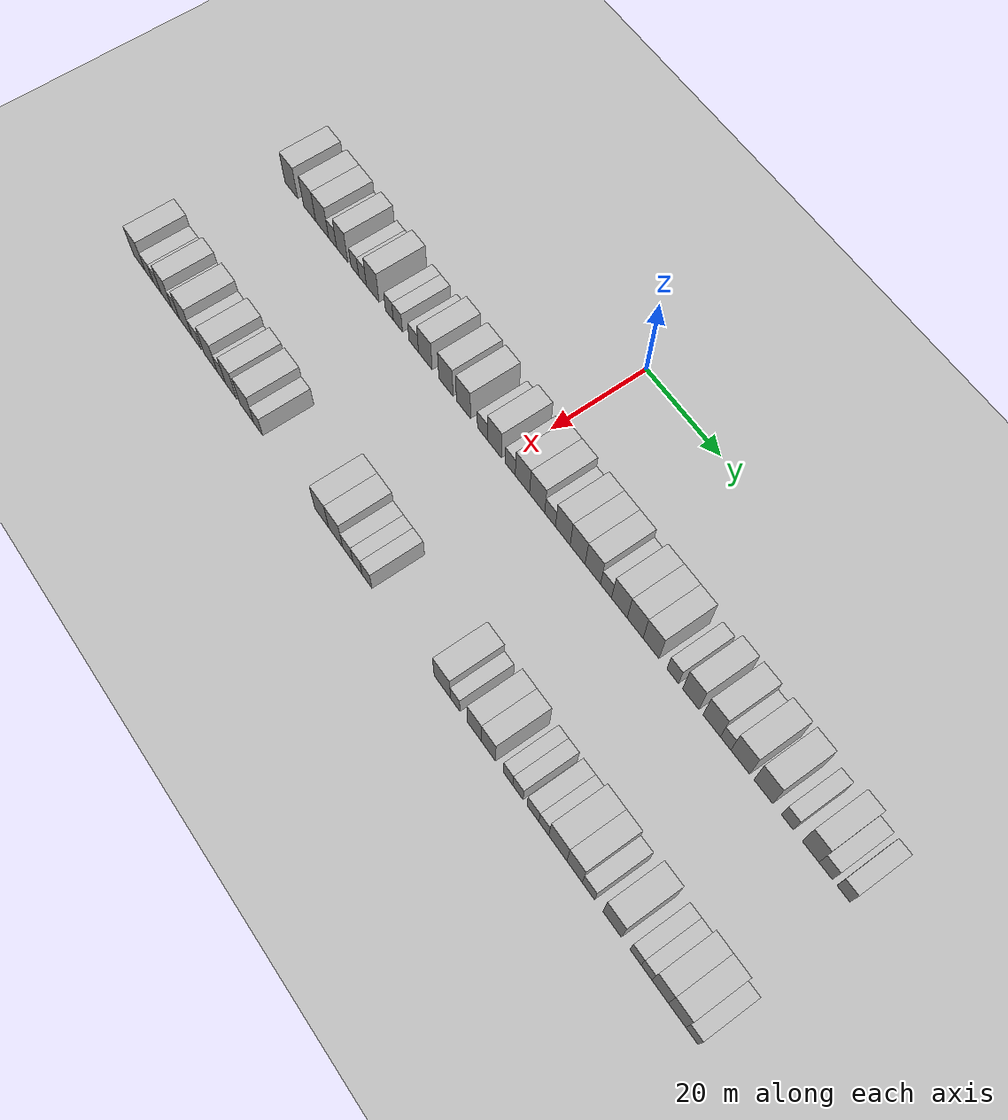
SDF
<sdf version="1.6">
 <world name="default">
  <include><name>ground_plane_1</name><uri>model://HANNAS_ground_plane</uri></include>
  <include>
   <name>ground_plane_2</name>
   <uri>model://HANNAS_ground_plane</uri>
   <pose>100 0 0  0 0 0</pose>
  </include>
  <model name="building_34">
   <static>1</static>
   <pose>25.0000 -65.5023 0 0.000000 0.000000 0.000000</pose>
   <link name="link">
    <pose>0 0 4.50 0 0 0</pose>
    <collision name="collision"><geometry><box><size>10.0000 4.3100 9.0000</size></box></geometry></collision>
    <visual name="visual">
     <cast_shadows>0</cast_shadows>
     <geometry><box><size>10.0000 4.3100 9.0000</size></box></geometry>
     <material>
      <script>
       <uri>model://HANNAS_wall/materials/scripts</uri>
       <uri>model://HANNAS_wall/materials/textures</uri>
       <name>vrc/HANNAS_wall</name>
      </script>
     </material>
    </visual>
   </link>
  </model>
  <model name="building_35">
   <static>1</static>
   <pose>25.0000 -59.3474 0 0.000000 0.000000 0.000000</pose>
   <link name="link">
    <pose>0 0 4.50 0 0 0</pose>
    <collision name="collision"><geometry><box><size>10.0000 3.9999 9.0000</size></box></geometry></collision>
    <visual name="visual">
     <cast_shadows>0</cast_shadows>
     <geometry><box><size>10.0000 3.9999 9.0000</size></box></geometry>
     <material>
      <script>
       <uri>model://HANNAS_wall/materials/scripts</uri>
       <uri>model://HANNAS_wall/materials/textures</uri>
       <name>vrc/HANNAS_wall</name>
      </script>
     </material>
    </visual>
   </link>
  </model>
  <model name="building_36">
   <static>1</static>
   <pose>25.0000 -55.2060 0 0.000000 0.000000 0.000000</pose>
   <link name="link">
    <pose>0 0 4.50 0 0 0</pose>
    <collision name="collision"><geometry><box><size>10.0000 4.2829 9.0000</size></box></geometry></collision>
    <visual name="visual">
     <cast_shadows>0</cast_shadows>
     <geometry><box><size>10.0000 4.2829 9.0000</size></box></geometry>
     <material>
      <script>
       <uri>model://HANNAS_wall/materials/scripts</uri>
       <uri>model://HANNAS_wall/materials/textures</uri>
       <name>vrc/HANNAS_wall</name>
      </script>
     </material>
    </visual>
   </link>
  </model>
  <model name="building_37">
   <static>1</static>
   <pose>25.0000 -51.7401 0 0.000000 0.000000 0.000000</pose>
   <link name="link">
    <pose>0 0 3.00 0 0 0</pose>
    <collision name="collision"><geometry><box><size>10.0000 2.6489 6.0000</size></box></geometry></collision>
    <visual name="visual">
     <cast_shadows>0</cast_shadows>
     <geometry><box><size>10.0000 2.6489 6.0000</size></box></geometry>
     <material>
      <script>
       <uri>model://HANNAS_wall/materials/scripts</uri>
       <uri>model://HANNAS_wall/materials/textures</uri>
       <name>vrc/HANNAS_wall</name>
      </script>
     </material>
    </visual>
   </link>
  </model>
  <model name="building_38">
   <static>1</static>
   <pose>25.0000 -48.6042 0 0.000000 0.000000 0.000000</pose>
   <link name="link">
    <pose>0 0 4.50 0 0 0</pose>
    <collision name="collision"><geometry><box><size>10.0000 3.6230 9.0000</size></box></geometry></collision>
    <visual name="visual">
     <cast_shadows>0</cast_shadows>
     <geometry><box><size>10.0000 3.6230 9.0000</size></box></geometry>
     <material>
      <script>
       <uri>model://HANNAS_wall/materials/scripts</uri>
       <uri>model://HANNAS_wall/materials/textures</uri>
       <name>vrc/HANNAS_wall</name>
      </script>
     </material>
    </visual>
   </link>
  </model>
  <model name="building_39">
   <static>1</static>
   <pose>25.0000 -44.5443 0 0.000000 0.000000 0.000000</pose>
   <link name="link">
    <pose>0 0 3.00 0 0 0</pose>
    <collision name="collision"><geometry><box><size>10.0000 2.4967 6.0000</size></box></geometry></collision>
    <visual name="visual">
     <cast_shadows>0</cast_shadows>
     <geometry><box><size>10.0000 2.4967 6.0000</size></box></geometry>
     <material>
      <script>
       <uri>model://HANNAS_wall/materials/scripts</uri>
       <uri>model://HANNAS_wall/materials/textures</uri>
       <name>vrc/HANNAS_wall</name>
      </script>
     </material>
    </visual>
   </link>
  </model>
  <model name="building_40">
   <static>1</static>
   <pose>25.0000 -42.0547 0 0.000000 0.000000 0.000000</pose>
   <link name="link">
    <pose>0 0 3.00 0 0 0</pose>
    <collision name="collision"><geometry><box><size>10.0000 2.4824 6.0000</size></box></geometry></collision>
    <visual name="visual">
     <cast_shadows>0</cast_shadows>
     <geometry><box><size>10.0000 2.4824 6.0000</size></box></geometry>
     <material>
      <script>
       <uri>model://HANNAS_wall/materials/scripts</uri>
       <uri>model://HANNAS_wall/materials/textures</uri>
       <name>vrc/HANNAS_wall</name>
      </script>
     </material>
    </visual>
   </link>
  </model>
  <model name="building_41">
   <static>1</static>
   <pose>25.0000 -38.8183 0 0.000000 0.000000 0.000000</pose>
   <link name="link">
    <pose>0 0 4.50 0 0 0</pose>
    <collision name="collision"><geometry><box><size>10.0000 3.9903 9.0000</size></box></geometry></collision>
    <visual name="visual">
     <cast_shadows>0</cast_shadows>
     <geometry><box><size>10.0000 3.9903 9.0000</size></box></geometry>
     <material>
      <script>
       <uri>model://HANNAS_wall/materials/scripts</uri>
       <uri>model://HANNAS_wall/materials/textures</uri>
       <name>vrc/HANNAS_wall</name>
      </script>
     </material>
    </visual>
   </link>
  </model>
  <model name="building_42">
   <static>1</static>
   <pose>25.0000 -33.5864 0 0.000000 0.000000 0.000000</pose>
   <link name="link">
    <pose>0 0 3.00 0 0 0</pose>
    <collision name="collision"><geometry><box><size>10.0000 2.4735 6.0000</size></box></geometry></collision>
    <visual name="visual">
     <cast_shadows>0</cast_shadows>
     <geometry><box><size>10.0000 2.4735 6.0000</size></box></geometry>
     <material>
      <script>
       <uri>model://HANNAS_wall/materials/scripts</uri>
       <uri>model://HANNAS_wall/materials/textures</uri>
       <name>vrc/HANNAS_wall</name>
      </script>
     </material>
    </visual>
   </link>
  </model>
  <model name="building_43">
   <static>1</static>
   <pose>25.0000 -30.9347 0 0.000000 0.000000 0.000000</pose>
   <link name="link">
    <pose>0 0 3.00 0 0 0</pose>
    <collision name="collision"><geometry><box><size>10.0000 2.8299 6.0000</size></box></geometry></collision>
    <visual name="visual">
     <cast_shadows>0</cast_shadows>
     <geometry><box><size>10.0000 2.8299 6.0000</size></box></geometry>
     <material>
      <script>
       <uri>model://HANNAS_wall/materials/scripts</uri>
       <uri>model://HANNAS_wall/materials/textures</uri>
       <name>vrc/HANNAS_wall</name>
      </script>
     </material>
    </visual>
   </link>
  </model>
  <model name="building_44">
   <static>1</static>
   <pose>25.0000 -26.0510 0 0.000000 0.000000 0.000000</pose>
   <link name="link">
    <pose>0 0 3.00 0 0 0</pose>
    <collision name="collision"><geometry><box><size>10.0000 2.9376 6.0000</size></box></geometry></collision>
    <visual name="visual">
     <cast_shadows>0</cast_shadows>
     <geometry><box><size>10.0000 2.9376 6.0000</size></box></geometry>
     <material>
      <script>
       <uri>model://HANNAS_wall/materials/scripts</uri>
       <uri>model://HANNAS_wall/materials/textures</uri>
       <name>vrc/HANNAS_wall</name>
      </script>
     </material>
    </visual>
   </link>
  </model>
  <model name="building_45">
   <static>1</static>
   <pose>25.0000 -22.5255 0 0.000000 0.000000 0.000000</pose>
   <link name="link">
    <pose>0 0 4.50 0 0 0</pose>
    <collision name="collision"><geometry><box><size>10.0000 4.1135 9.0000</size></box></geometry></collision>
    <visual name="visual">
     <cast_shadows>0</cast_shadows>
     <geometry><box><size>10.0000 4.1135 9.0000</size></box></geometry>
     <material>
      <script>
       <uri>model://HANNAS_wall/materials/scripts</uri>
       <uri>model://HANNAS_wall/materials/textures</uri>
       <name>vrc/HANNAS_wall</name>
      </script>
     </material>
    </visual>
   </link>
  </model>
  <model name="building_46">
   <static>1</static>
   <pose>25.0000 -16.3590 0 0.000000 0.000000 0.000000</pose>
   <link name="link">
    <pose>0 0 4.50 0 0 0</pose>
    <collision name="collision"><geometry><box><size>10.0000 4.2193 9.0000</size></box></geometry></collision>
    <visual name="visual">
     <cast_shadows>0</cast_shadows>
     <geometry><box><size>10.0000 4.2193 9.0000</size></box></geometry>
     <material>
      <script>
       <uri>model://HANNAS_wall/materials/scripts</uri>
       <uri>model://HANNAS_wall/materials/textures</uri>
       <name>vrc/HANNAS_wall</name>
      </script>
     </material>
    </visual>
   </link>
  </model>
  <model name="building_47">
   <static>1</static>
   <pose>25.0000 -11.1760 0 0.000000 0.000000 0.000000</pose>
   <link name="link">
    <pose>0 0 4.50 0 0 0</pose>
    <collision name="collision"><geometry><box><size>10.0000 4.1468 9.0000</size></box></geometry></collision>
    <visual name="visual">
     <cast_shadows>0</cast_shadows>
     <geometry><box><size>10.0000 4.1468 9.0000</size></box></geometry>
     <material>
      <script>
       <uri>model://HANNAS_wall/materials/scripts</uri>
       <uri>model://HANNAS_wall/materials/textures</uri>
       <name>vrc/HANNAS_wall</name>
      </script>
     </material>
    </visual>
   </link>
  </model>
  <model name="building_48">
   <static>1</static>
   <pose>25.0000 -5.6765 0 0.000000 0.000000 0.000000</pose>
   <link name="link">
    <pose>0 0 3.00 0 0 0</pose>
    <collision name="collision"><geometry><box><size>10.0000 2.8521 6.0000</size></box></geometry></collision>
    <visual name="visual">
     <cast_shadows>0</cast_shadows>
     <geometry><box><size>10.0000 2.8521 6.0000</size></box></geometry>
     <material>
      <script>
       <uri>model://HANNAS_wall/materials/scripts</uri>
       <uri>model://HANNAS_wall/materials/textures</uri>
       <name>vrc/HANNAS_wall</name>
      </script>
     </material>
    </visual>
   </link>
  </model>
  <model name="building_49">
   <static>1</static>
   <pose>25.0000 -2.2138 0 0.000000 0.000000 0.000000</pose>
   <link name="link">
    <pose>0 0 4.50 0 0 0</pose>
    <collision name="collision"><geometry><box><size>10.0000 4.0734 9.0000</size></box></geometry></collision>
    <visual name="visual">
     <cast_shadows>0</cast_shadows>
     <geometry><box><size>10.0000 4.0734 9.0000</size></box></geometry>
     <material>
      <script>
       <uri>model://HANNAS_wall/materials/scripts</uri>
       <uri>model://HANNAS_wall/materials/textures</uri>
       <name>vrc/HANNAS_wall</name>
      </script>
     </material>
    </visual>
   </link>
  </model>
  <model name="building_50">
   <static>1</static>
   <pose>25.0000 2.2588 0 0.000000 0.000000 0.000000</pose>
   <link name="link">
    <pose>0 0 3.00 0 0 0</pose>
    <collision name="collision"><geometry><box><size>10.0000 2.8717 6.0000</size></box></geometry></collision>
    <visual name="visual">
     <cast_shadows>0</cast_shadows>
     <geometry><box><size>10.0000 2.8717 6.0000</size></box></geometry>
     <material>
      <script>
       <uri>model://HANNAS_wall/materials/scripts</uri>
       <uri>model://HANNAS_wall/materials/textures</uri>
       <name>vrc/HANNAS_wall</name>
      </script>
     </material>
    </visual>
   </link>
  </model>
  <model name="building_51">
   <static>1</static>
   <pose>25.0000 5.7021 0 0.000000 0.000000 0.000000</pose>
   <link name="link">
    <pose>0 0 4.50 0 0 0</pose>
    <collision name="collision"><geometry><box><size>10.0000 4.0148 9.0000</size></box></geometry></collision>
    <visual name="visual">
     <cast_shadows>0</cast_shadows>
     <geometry><box><size>10.0000 4.0148 9.0000</size></box></geometry>
     <material>
      <script>
       <uri>model://HANNAS_wall/materials/scripts</uri>
       <uri>model://HANNAS_wall/materials/textures</uri>
       <name>vrc/HANNAS_wall</name>
      </script>
     </material>
    </visual>
   </link>
  </model>
  <model name="building_52">
   <static>1</static>
   <pose>25.0000 9.8063 0 0.000000 0.000000 0.000000</pose>
   <link name="link">
    <pose>0 0 4.50 0 0 0</pose>
    <collision name="collision"><geometry><box><size>10.0000 4.1936 9.0000</size></box></geometry></collision>
    <visual name="visual">
     <cast_shadows>0</cast_shadows>
     <geometry><box><size>10.0000 4.1936 9.0000</size></box></geometry>
     <material>
      <script>
       <uri>model://HANNAS_wall/materials/scripts</uri>
       <uri>model://HANNAS_wall/materials/textures</uri>
       <name>vrc/HANNAS_wall</name>
      </script>
     </material>
    </visual>
   </link>
  </model>
  <model name="building_53">
   <static>1</static>
   <pose>25.0000 13.3732 0 0.000000 0.000000 0.000000</pose>
   <link name="link">
    <pose>0 0 3.00 0 0 0</pose>
    <collision name="collision"><geometry><box><size>10.0000 2.9401 6.0000</size></box></geometry></collision>
    <visual name="visual">
     <cast_shadows>0</cast_shadows>
     <geometry><box><size>10.0000 2.9401 6.0000</size></box></geometry>
     <material>
      <script>
       <uri>model://HANNAS_wall/materials/scripts</uri>
       <uri>model://HANNAS_wall/materials/textures</uri>
       <name>vrc/HANNAS_wall</name>
      </script>
     </material>
    </visual>
   </link>
  </model>
  <model name="building_54">
   <static>1</static>
   <pose>25.0000 16.8367 0 0.000000 0.000000 0.000000</pose>
   <link name="link">
    <pose>0 0 4.50 0 0 0</pose>
    <collision name="collision"><geometry><box><size>10.0000 3.9869 9.0000</size></box></geometry></collision>
    <visual name="visual">
     <cast_shadows>0</cast_shadows>
     <geometry><box><size>10.0000 3.9869 9.0000</size></box></geometry>
     <material>
      <script>
       <uri>model://HANNAS_wall/materials/scripts</uri>
       <uri>model://HANNAS_wall/materials/textures</uri>
       <name>vrc/HANNAS_wall</name>
      </script>
     </material>
    </visual>
   </link>
  </model>
  <model name="building_55">
   <static>1</static>
   <pose>25.0000 20.8237 0 0.000000 0.000000 0.000000</pose>
   <link name="link">
    <pose>0 0 4.50 0 0 0</pose>
    <collision name="collision"><geometry><box><size>10.0000 3.9871 9.0000</size></box></geometry></collision>
    <visual name="visual">
     <cast_shadows>0</cast_shadows>
     <geometry><box><size>10.0000 3.9871 9.0000</size></box></geometry>
     <material>
      <script>
       <uri>model://HANNAS_wall/materials/scripts</uri>
       <uri>model://HANNAS_wall/materials/textures</uri>
       <name>vrc/HANNAS_wall</name>
      </script>
     </material>
    </visual>
   </link>
  </model>
  <model name="building_56">
   <static>1</static>
   <pose>25.0000 24.8852 0 0.000000 0.000000 0.000000</pose>
   <link name="link">
    <pose>0 0 4.50 0 0 0</pose>
    <collision name="collision"><geometry><box><size>10.0000 4.1360 9.0000</size></box></geometry></collision>
    <visual name="visual">
     <cast_shadows>0</cast_shadows>
     <geometry><box><size>10.0000 4.1360 9.0000</size></box></geometry>
     <material>
      <script>
       <uri>model://HANNAS_wall/materials/scripts</uri>
       <uri>model://HANNAS_wall/materials/textures</uri>
       <name>vrc/HANNAS_wall</name>
      </script>
     </material>
    </visual>
   </link>
  </model>
  <model name="building_57">
   <static>1</static>
   <pose>25.0000 28.3893 0 0.000000 0.000000 0.000000</pose>
   <link name="link">
    <pose>0 0 3.00 0 0 0</pose>
    <collision name="collision"><geometry><box><size>10.0000 2.8722 6.0000</size></box></geometry></collision>
    <visual name="visual">
     <cast_shadows>0</cast_shadows>
     <geometry><box><size>10.0000 2.8722 6.0000</size></box></geometry>
     <material>
      <script>
       <uri>model://HANNAS_wall/materials/scripts</uri>
       <uri>model://HANNAS_wall/materials/textures</uri>
       <name>vrc/HANNAS_wall</name>
      </script>
     </material>
    </visual>
   </link>
  </model>
  <model name="building_58">
   <static>1</static>
   <pose>25.0000 31.8541 0 0.000000 0.000000 0.000000</pose>
   <link name="link">
    <pose>0 0 4.50 0 0 0</pose>
    <collision name="collision"><geometry><box><size>10.0000 4.0575 9.0000</size></box></geometry></collision>
    <visual name="visual">
     <cast_shadows>0</cast_shadows>
     <geometry><box><size>10.0000 4.0575 9.0000</size></box></geometry>
     <material>
      <script>
       <uri>model://HANNAS_wall/materials/scripts</uri>
       <uri>model://HANNAS_wall/materials/textures</uri>
       <name>vrc/HANNAS_wall</name>
      </script>
     </material>
    </visual>
   </link>
  </model>
  <model name="building_59">
   <static>1</static>
   <pose>25.0000 35.9184 0 0.000000 0.000000 0.000000</pose>
   <link name="link">
    <pose>0 0 4.50 0 0 0</pose>
    <collision name="collision"><geometry><box><size>10.0000 4.0711 9.0000</size></box></geometry></collision>
    <visual name="visual">
     <cast_shadows>0</cast_shadows>
     <geometry><box><size>10.0000 4.0711 9.0000</size></box></geometry>
     <material>
      <script>
       <uri>model://HANNAS_wall/materials/scripts</uri>
       <uri>model://HANNAS_wall/materials/textures</uri>
       <name>vrc/HANNAS_wall</name>
      </script>
     </material>
    </visual>
   </link>
  </model>
  <model name="building_60">
   <static>1</static>
   <pose>25.0000 39.9813 0 0.000000 0.000000 0.000000</pose>
   <link name="link">
    <pose>0 0 4.50 0 0 0</pose>
    <collision name="collision"><geometry><box><size>10.0000 4.0546 9.0000</size></box></geometry></collision>
    <visual name="visual">
     <cast_shadows>0</cast_shadows>
     <geometry><box><size>10.0000 4.0546 9.0000</size></box></geometry>
     <material>
      <script>
       <uri>model://HANNAS_wall/materials/scripts</uri>
       <uri>model://HANNAS_wall/materials/textures</uri>
       <name>vrc/HANNAS_wall</name>
      </script>
     </material>
    </visual>
   </link>
  </model>
  <model name="building_61">
   <static>1</static>
   <pose>25.0000 45.4525 0 0.000000 0.000000 0.000000</pose>
   <link name="link">
    <pose>0 0 3.00 0 0 0</pose>
    <collision name="collision"><geometry><box><size>10.0000 2.8880 6.0000</size></box></geometry></collision>
    <visual name="visual">
     <cast_shadows>0</cast_shadows>
     <geometry><box><size>10.0000 2.8880 6.0000</size></box></geometry>
     <material>
      <script>
       <uri>model://HANNAS_wall/materials/scripts</uri>
       <uri>model://HANNAS_wall/materials/textures</uri>
       <name>vrc/HANNAS_wall</name>
      </script>
     </material>
    </visual>
   </link>
  </model>
  <model name="building_62">
   <static>1</static>
   <pose>25.0000 49.9165 0 0.000000 0.000000 0.000000</pose>
   <link name="link">
    <pose>0 0 4.50 0 0 0</pose>
    <collision name="collision"><geometry><box><size>10.0000 4.0400 9.0000</size></box></geometry></collision>
    <visual name="visual">
     <cast_shadows>0</cast_shadows>
     <geometry><box><size>10.0000 4.0400 9.0000</size></box></geometry>
     <material>
      <script>
       <uri>model://HANNAS_wall/materials/scripts</uri>
       <uri>model://HANNAS_wall/materials/textures</uri>
       <name>vrc/HANNAS_wall</name>
      </script>
     </material>
    </visual>
   </link>
  </model>
  <model name="building_63">
   <static>1</static>
   <pose>25.0000 55.0288 0 0.000000 0.000000 0.000000</pose>
   <link name="link">
    <pose>0 0 4.50 0 0 0</pose>
    <collision name="collision"><geometry><box><size>10.0000 4.1845 9.0000</size></box></geometry></collision>
    <visual name="visual">
     <cast_shadows>0</cast_shadows>
     <geometry><box><size>10.0000 4.1845 9.0000</size></box></geometry>
     <material>
      <script>
       <uri>model://HANNAS_wall/materials/scripts</uri>
       <uri>model://HANNAS_wall/materials/textures</uri>
       <name>vrc/HANNAS_wall</name>
      </script>
     </material>
    </visual>
   </link>
  </model>
  <model name="building_64">
   <static>1</static>
   <pose>25.0000 58.3787 0 0.000000 0.000000 0.000000</pose>
   <link name="link">
    <pose>0 0 3.00 0 0 0</pose>
    <collision name="collision"><geometry><box><size>10.0000 2.5154 6.0000</size></box></geometry></collision>
    <visual name="visual">
     <cast_shadows>0</cast_shadows>
     <geometry><box><size>10.0000 2.5154 6.0000</size></box></geometry>
     <material>
      <script>
       <uri>model://HANNAS_wall/materials/scripts</uri>
       <uri>model://HANNAS_wall/materials/textures</uri>
       <name>vrc/HANNAS_wall</name>
      </script>
     </material>
    </visual>
   </link>
  </model>
  <model name="building_65">
   <static>1</static>
   <pose>25.0000 61.8660 0 0.000000 0.000000 0.000000</pose>
   <link name="link">
    <pose>0 0 4.50 0 0 0</pose>
    <collision name="collision"><geometry><box><size>10.0000 4.4591 9.0000</size></box></geometry></collision>
    <visual name="visual">
     <cast_shadows>0</cast_shadows>
     <geometry><box><size>10.0000 4.4591 9.0000</size></box></geometry>
     <material>
      <script>
       <uri>model://HANNAS_wall/materials/scripts</uri>
       <uri>model://HANNAS_wall/materials/textures</uri>
       <name>vrc/HANNAS_wall</name>
      </script>
     </material>
    </visual>
   </link>
  </model>
  <model name="building_66">
   <static>1</static>
   <pose>25.0000 67.2920 0 0.000000 0.000000 0.000000</pose>
   <link name="link">
    <pose>0 0 4.50 0 0 0</pose>
    <collision name="collision"><geometry><box><size>10.0000 4.3930 9.0000</size></box></geometry></collision>
    <visual name="visual">
     <cast_shadows>0</cast_shadows>
     <geometry><box><size>10.0000 4.3930 9.0000</size></box></geometry>
     <material>
      <script>
       <uri>model://HANNAS_wall/materials/scripts</uri>
       <uri>model://HANNAS_wall/materials/textures</uri>
       <name>vrc/HANNAS_wall</name>
      </script>
     </material>
    </visual>
   </link>
  </model>
  <model name="building_67">
   <static>1</static>
   <pose>25.0000 72.8532 0 0.000000 0.000000 0.000000</pose>
   <link name="link">
    <pose>0 0 3.00 0 0 0</pose>
    <collision name="collision"><geometry><box><size>10.0000 2.7295 6.0000</size></box></geometry></collision>
    <visual name="visual">
     <cast_shadows>0</cast_shadows>
     <geometry><box><size>10.0000 2.7295 6.0000</size></box></geometry>
     <material>
      <script>
       <uri>model://HANNAS_wall/materials/scripts</uri>
       <uri>model://HANNAS_wall/materials/textures</uri>
       <name>vrc/HANNAS_wall</name>
      </script>
     </material>
    </visual>
   </link>
  </model>
  <model name="building_68">
   <static>1</static>
   <pose>25.0000 78.1152 0 0.000000 0.000000 0.000000</pose>
   <link name="link">
    <pose>0 0 4.50 0 0 0</pose>
    <collision name="collision"><geometry><box><size>10.0000 3.7944 9.0000</size></box></geometry></collision>
    <visual name="visual">
     <cast_shadows>0</cast_shadows>
     <geometry><box><size>10.0000 3.7944 9.0000</size></box></geometry>
     <material>
      <script>
       <uri>model://HANNAS_wall/materials/scripts</uri>
       <uri>model://HANNAS_wall/materials/textures</uri>
       <name>vrc/HANNAS_wall</name>
      </script>
     </material>
    </visual>
   </link>
  </model>
  <model name="building_69">
   <static>1</static>
   <pose>25.0000 81.5113 0 0.000000 0.000000 0.000000</pose>
   <link name="link">
    <pose>0 0 3.00 0 0 0</pose>
    <collision name="collision"><geometry><box><size>10.0000 2.9978 6.0000</size></box></geometry></collision>
    <visual name="visual">
     <cast_shadows>0</cast_shadows>
     <geometry><box><size>10.0000 2.9978 6.0000</size></box></geometry>
     <material>
      <script>
       <uri>model://HANNAS_wall/materials/scripts</uri>
       <uri>model://HANNAS_wall/materials/textures</uri>
       <name>vrc/HANNAS_wall</name>
      </script>
     </material>
    </visual>
   </link>
  </model>
  <model name="building_70">
   <static>1</static>
   <pose>25.0000 85.4505 0 0.000000 0.000000 0.000000</pose>
   <link name="link">
    <pose>0 0 3.00 0 0 0</pose>
    <collision name="collision"><geometry><box><size>10.0000 2.8807 6.0000</size></box></geometry></collision>
    <visual name="visual">
     <cast_shadows>0</cast_shadows>
     <geometry><box><size>10.0000 2.8807 6.0000</size></box></geometry>
     <material>
      <script>
       <uri>model://HANNAS_wall/materials/scripts</uri>
       <uri>model://HANNAS_wall/materials/textures</uri>
       <name>vrc/HANNAS_wall</name>
      </script>
     </material>
    </visual>
   </link>
  </model>
  <model name="building_148">
   <static>1</static>
   <pose>55.0000 -67.5060 0 0.000000 0.000000 0.000000</pose>
   <link name="link">
    <pose>0 0 4.50 0 0 0</pose>
    <collision name="collision"><geometry><box><size>10.0000 4.1159 9.0000</size></box></geometry></collision>
    <visual name="visual">
     <cast_shadows>0</cast_shadows>
     <geometry><box><size>10.0000 4.1159 9.0000</size></box></geometry>
     <material>
      <script>
       <uri>model://HANNAS_wall/materials/scripts</uri>
       <uri>model://HANNAS_wall/materials/textures</uri>
       <name>vrc/HANNAS_wall</name>
      </script>
     </material>
    </visual>
   </link>
  </model>
  <model name="building_149">
   <static>1</static>
   <pose>55.0000 -63.9919 0 0.000000 0.000000 0.000000</pose>
   <link name="link">
    <pose>0 0 3.00 0 0 0</pose>
    <collision name="collision"><geometry><box><size>10.0000 2.9124 6.0000</size></box></geometry></collision>
    <visual name="visual">
     <cast_shadows>0</cast_shadows>
     <geometry><box><size>10.0000 2.9124 6.0000</size></box></geometry>
     <material>
      <script>
       <uri>model://HANNAS_wall/materials/scripts</uri>
       <uri>model://HANNAS_wall/materials/textures</uri>
       <name>vrc/HANNAS_wall</name>
      </script>
     </material>
    </visual>
   </link>
  </model>
  <model name="building_150">
   <static>1</static>
   <pose>55.0000 -61.2125 0 0.000000 0.000000 0.000000</pose>
   <link name="link">
    <pose>0 0 3.00 0 0 0</pose>
    <collision name="collision"><geometry><box><size>10.0000 2.6464 6.0000</size></box></geometry></collision>
    <visual name="visual">
     <cast_shadows>0</cast_shadows>
     <geometry><box><size>10.0000 2.6464 6.0000</size></box></geometry>
     <material>
      <script>
       <uri>model://HANNAS_wall/materials/scripts</uri>
       <uri>model://HANNAS_wall/materials/textures</uri>
       <name>vrc/HANNAS_wall</name>
      </script>
     </material>
    </visual>
   </link>
  </model>
  <model name="building_151">
   <static>1</static>
   <pose>55.0000 -58.0009 0 0.000000 0.000000 0.000000</pose>
   <link name="link">
    <pose>0 0 4.50 0 0 0</pose>
    <collision name="collision"><geometry><box><size>10.0000 3.7767 9.0000</size></box></geometry></collision>
    <visual name="visual">
     <cast_shadows>0</cast_shadows>
     <geometry><box><size>10.0000 3.7767 9.0000</size></box></geometry>
     <material>
      <script>
       <uri>model://HANNAS_wall/materials/scripts</uri>
       <uri>model://HANNAS_wall/materials/textures</uri>
       <name>vrc/HANNAS_wall</name>
      </script>
     </material>
    </visual>
   </link>
  </model>
  <model name="building_152">
   <static>1</static>
   <pose>55.0000 -54.8545 0 0.000000 0.000000 0.000000</pose>
   <link name="link">
    <pose>0 0 3.00 0 0 0</pose>
    <collision name="collision"><geometry><box><size>10.0000 2.5161 6.0000</size></box></geometry></collision>
    <visual name="visual">
     <cast_shadows>0</cast_shadows>
     <geometry><box><size>10.0000 2.5161 6.0000</size></box></geometry>
     <material>
      <script>
       <uri>model://HANNAS_wall/materials/scripts</uri>
       <uri>model://HANNAS_wall/materials/textures</uri>
       <name>vrc/HANNAS_wall</name>
      </script>
     </material>
    </visual>
   </link>
  </model>
  <model name="building_153">
   <static>1</static>
   <pose>55.0000 -51.4045 0 0.000000 0.000000 0.000000</pose>
   <link name="link">
    <pose>0 0 4.50 0 0 0</pose>
    <collision name="collision"><geometry><box><size>10.0000 4.3841 9.0000</size></box></geometry></collision>
    <visual name="visual">
     <cast_shadows>0</cast_shadows>
     <geometry><box><size>10.0000 4.3841 9.0000</size></box></geometry>
     <material>
      <script>
       <uri>model://HANNAS_wall/materials/scripts</uri>
       <uri>model://HANNAS_wall/materials/textures</uri>
       <name>vrc/HANNAS_wall</name>
      </script>
     </material>
    </visual>
   </link>
  </model>
  <model name="building_154">
   <static>1</static>
   <pose>55.0000 -47.7237 0 0.000000 0.000000 0.000000</pose>
   <link name="link">
    <pose>0 0 3.00 0 0 0</pose>
    <collision name="collision"><geometry><box><size>10.0000 2.9774 6.0000</size></box></geometry></collision>
    <visual name="visual">
     <cast_shadows>0</cast_shadows>
     <geometry><box><size>10.0000 2.9774 6.0000</size></box></geometry>
     <material>
      <script>
       <uri>model://HANNAS_wall/materials/scripts</uri>
       <uri>model://HANNAS_wall/materials/textures</uri>
       <name>vrc/HANNAS_wall</name>
      </script>
     </material>
    </visual>
   </link>
  </model>
  <model name="building_155">
   <static>1</static>
   <pose>55.0000 -43.0448 0 0.000000 0.000000 0.000000</pose>
   <link name="link">
    <pose>0 0 4.50 0 0 0</pose>
    <collision name="collision"><geometry><box><size>10.0000 4.3804 9.0000</size></box></geometry></collision>
    <visual name="visual">
     <cast_shadows>0</cast_shadows>
     <geometry><box><size>10.0000 4.3804 9.0000</size></box></geometry>
     <material>
      <script>
       <uri>model://HANNAS_wall/materials/scripts</uri>
       <uri>model://HANNAS_wall/materials/textures</uri>
       <name>vrc/HANNAS_wall</name>
      </script>
     </material>
    </visual>
   </link>
  </model>
  <model name="building_156">
   <static>1</static>
   <pose>55.0000 -39.5340 0 0.000000 0.000000 0.000000</pose>
   <link name="link">
    <pose>0 0 3.00 0 0 0</pose>
    <collision name="collision"><geometry><box><size>10.0000 2.6412 6.0000</size></box></geometry></collision>
    <visual name="visual">
     <cast_shadows>0</cast_shadows>
     <geometry><box><size>10.0000 2.6412 6.0000</size></box></geometry>
     <material>
      <script>
       <uri>model://HANNAS_wall/materials/scripts</uri>
       <uri>model://HANNAS_wall/materials/textures</uri>
       <name>vrc/HANNAS_wall</name>
      </script>
     </material>
    </visual>
   </link>
  </model>
  <model name="building_157">
   <static>1</static>
   <pose>55.0000 -36.3586 0 0.000000 0.000000 0.000000</pose>
   <link name="link">
    <pose>0 0 4.50 0 0 0</pose>
    <collision name="collision"><geometry><box><size>10.0000 3.7096 9.0000</size></box></geometry></collision>
    <visual name="visual">
     <cast_shadows>0</cast_shadows>
     <geometry><box><size>10.0000 3.7096 9.0000</size></box></geometry>
     <material>
      <script>
       <uri>model://HANNAS_wall/materials/scripts</uri>
       <uri>model://HANNAS_wall/materials/textures</uri>
       <name>vrc/HANNAS_wall</name>
      </script>
     </material>
    </visual>
   </link>
  </model>
  <model name="building_158">
   <static>1</static>
   <pose>55.0000 -31.2724 0 0.000000 0.000000 0.000000</pose>
   <link name="link">
    <pose>0 0 4.50 0 0 0</pose>
    <collision name="collision"><geometry><box><size>10.0000 4.4628 9.0000</size></box></geometry></collision>
    <visual name="visual">
     <cast_shadows>0</cast_shadows>
     <geometry><box><size>10.0000 4.4628 9.0000</size></box></geometry>
     <material>
      <script>
       <uri>model://HANNAS_wall/materials/scripts</uri>
       <uri>model://HANNAS_wall/materials/textures</uri>
       <name>vrc/HANNAS_wall</name>
      </script>
     </material>
    </visual>
   </link>
  </model>
  <model name="building_159">
   <static>1</static>
   <pose>55.0000 -27.6220 0 0.000000 0.000000 0.000000</pose>
   <link name="link">
    <pose>0 0 3.00 0 0 0</pose>
    <collision name="collision"><geometry><box><size>10.0000 2.8379 6.0000</size></box></geometry></collision>
    <visual name="visual">
     <cast_shadows>0</cast_shadows>
     <geometry><box><size>10.0000 2.8379 6.0000</size></box></geometry>
     <material>
      <script>
       <uri>model://HANNAS_wall/materials/scripts</uri>
       <uri>model://HANNAS_wall/materials/textures</uri>
       <name>vrc/HANNAS_wall</name>
      </script>
     </material>
    </visual>
   </link>
  </model>
  <model name="building_160">
   <static>1</static>
   <pose>55.0000 -7.9228 0 0.000000 0.000000 0.000000</pose>
   <link name="link">
    <pose>0 0 4.50 0 0 0</pose>
    <collision name="collision"><geometry><box><size>10.0000 4.1869 9.0000</size></box></geometry></collision>
    <visual name="visual">
     <cast_shadows>0</cast_shadows>
     <geometry><box><size>10.0000 4.1869 9.0000</size></box></geometry>
     <material>
      <script>
       <uri>model://HANNAS_wall/materials/scripts</uri>
       <uri>model://HANNAS_wall/materials/textures</uri>
       <name>vrc/HANNAS_wall</name>
      </script>
     </material>
    </visual>
   </link>
  </model>
  <model name="building_161">
   <static>1</static>
   <pose>55.0000 -3.7495 0 0.000000 0.000000 0.000000</pose>
   <link name="link">
    <pose>0 0 4.50 0 0 0</pose>
    <collision name="collision"><geometry><box><size>10.0000 4.1598 9.0000</size></box></geometry></collision>
    <visual name="visual">
     <cast_shadows>0</cast_shadows>
     <geometry><box><size>10.0000 4.1598 9.0000</size></box></geometry>
     <material>
      <script>
       <uri>model://HANNAS_wall/materials/scripts</uri>
       <uri>model://HANNAS_wall/materials/textures</uri>
       <name>vrc/HANNAS_wall</name>
      </script>
     </material>
    </visual>
   </link>
  </model>
  <model name="building_162">
   <static>1</static>
   <pose>55.0000 -0.1798 0 0.000000 0.000000 0.000000</pose>
   <link name="link">
    <pose>0 0 3.00 0 0 0</pose>
    <collision name="collision"><geometry><box><size>10.0000 2.9796 6.0000</size></box></geometry></collision>
    <visual name="visual">
     <cast_shadows>0</cast_shadows>
     <geometry><box><size>10.0000 2.9796 6.0000</size></box></geometry>
     <material>
      <script>
       <uri>model://HANNAS_wall/materials/scripts</uri>
       <uri>model://HANNAS_wall/materials/textures</uri>
       <name>vrc/HANNAS_wall</name>
      </script>
     </material>
    </visual>
   </link>
  </model>
  <model name="building_163">
   <static>1</static>
   <pose>55.0000 2.6641 0 0.000000 0.000000 0.000000</pose>
   <link name="link">
    <pose>0 0 3.00 0 0 0</pose>
    <collision name="collision"><geometry><box><size>10.0000 2.7081 6.0000</size></box></geometry></collision>
    <visual name="visual">
     <cast_shadows>0</cast_shadows>
     <geometry><box><size>10.0000 2.7081 6.0000</size></box></geometry>
     <material>
      <script>
       <uri>model://HANNAS_wall/materials/scripts</uri>
       <uri>model://HANNAS_wall/materials/textures</uri>
       <name>vrc/HANNAS_wall</name>
      </script>
     </material>
    </visual>
   </link>
  </model>
  <model name="building_164">
   <static>1</static>
   <pose>55.0000 5.4412 0 0.000000 0.000000 0.000000</pose>
   <link name="link">
    <pose>0 0 3.00 0 0 0</pose>
    <collision name="collision"><geometry><box><size>10.0000 2.8462 6.0000</size></box></geometry></collision>
    <visual name="visual">
     <cast_shadows>0</cast_shadows>
     <geometry><box><size>10.0000 2.8462 6.0000</size></box></geometry>
     <material>
      <script>
       <uri>model://HANNAS_wall/materials/scripts</uri>
       <uri>model://HANNAS_wall/materials/textures</uri>
       <name>vrc/HANNAS_wall</name>
      </script>
     </material>
    </visual>
   </link>
  </model>
  <model name="building_165">
   <static>1</static>
   <pose>55.0000 26.5648 0 0.000000 0.000000 0.000000</pose>
   <link name="link">
    <pose>0 0 4.50 0 0 0</pose>
    <collision name="collision"><geometry><box><size>10.0000 4.4670 9.0000</size></box></geometry></collision>
    <visual name="visual">
     <cast_shadows>0</cast_shadows>
     <geometry><box><size>10.0000 4.4670 9.0000</size></box></geometry>
     <material>
      <script>
       <uri>model://HANNAS_wall/materials/scripts</uri>
       <uri>model://HANNAS_wall/materials/textures</uri>
       <name>vrc/HANNAS_wall</name>
      </script>
     </material>
    </visual>
   </link>
  </model>
  <model name="building_166">
   <static>1</static>
   <pose>55.0000 30.0605 0 0.000000 0.000000 0.000000</pose>
   <link name="link">
    <pose>0 0 3.00 0 0 0</pose>
    <collision name="collision"><geometry><box><size>10.0000 2.5244 6.0000</size></box></geometry></collision>
    <visual name="visual">
     <cast_shadows>0</cast_shadows>
     <geometry><box><size>10.0000 2.5244 6.0000</size></box></geometry>
     <material>
      <script>
       <uri>model://HANNAS_wall/materials/scripts</uri>
       <uri>model://HANNAS_wall/materials/textures</uri>
       <name>vrc/HANNAS_wall</name>
      </script>
     </material>
    </visual>
   </link>
  </model>
  <model name="building_167">
   <static>1</static>
   <pose>55.0000 35.1649 0 0.000000 0.000000 0.000000</pose>
   <link name="link">
    <pose>0 0 4.50 0 0 0</pose>
    <collision name="collision"><geometry><box><size>10.0000 3.6843 9.0000</size></box></geometry></collision>
    <visual name="visual">
     <cast_shadows>0</cast_shadows>
     <geometry><box><size>10.0000 3.6843 9.0000</size></box></geometry>
     <material>
      <script>
       <uri>model://HANNAS_wall/materials/scripts</uri>
       <uri>model://HANNAS_wall/materials/textures</uri>
       <name>vrc/HANNAS_wall</name>
      </script>
     </material>
    </visual>
   </link>
  </model>
  <model name="building_168">
   <static>1</static>
   <pose>55.0000 38.8623 0 0.000000 0.000000 0.000000</pose>
   <link name="link">
    <pose>0 0 4.50 0 0 0</pose>
    <collision name="collision"><geometry><box><size>10.0000 3.7105 9.0000</size></box></geometry></collision>
    <visual name="visual">
     <cast_shadows>0</cast_shadows>
     <geometry><box><size>10.0000 3.7105 9.0000</size></box></geometry>
     <material>
      <script>
       <uri>model://HANNAS_wall/materials/scripts</uri>
       <uri>model://HANNAS_wall/materials/textures</uri>
       <name>vrc/HANNAS_wall</name>
      </script>
     </material>
    </visual>
   </link>
  </model>
  <model name="building_169">
   <static>1</static>
   <pose>55.0000 43.9409 0 0.000000 0.000000 0.000000</pose>
   <link name="link">
    <pose>0 0 3.00 0 0 0</pose>
    <collision name="collision"><geometry><box><size>10.0000 2.4468 6.0000</size></box></geometry></collision>
    <visual name="visual">
     <cast_shadows>0</cast_shadows>
     <geometry><box><size>10.0000 2.4468 6.0000</size></box></geometry>
     <material>
      <script>
       <uri>model://HANNAS_wall/materials/scripts</uri>
       <uri>model://HANNAS_wall/materials/textures</uri>
       <name>vrc/HANNAS_wall</name>
      </script>
     </material>
    </visual>
   </link>
  </model>
  <model name="building_170">
   <static>1</static>
   <pose>55.0000 46.4843 0 0.000000 0.000000 0.000000</pose>
   <link name="link">
    <pose>0 0 3.00 0 0 0</pose>
    <collision name="collision"><geometry><box><size>10.0000 2.6398 6.0000</size></box></geometry></collision>
    <visual name="visual">
     <cast_shadows>0</cast_shadows>
     <geometry><box><size>10.0000 2.6398 6.0000</size></box></geometry>
     <material>
      <script>
       <uri>model://HANNAS_wall/materials/scripts</uri>
       <uri>model://HANNAS_wall/materials/textures</uri>
       <name>vrc/HANNAS_wall</name>
      </script>
     </material>
    </visual>
   </link>
  </model>
  <model name="building_171">
   <static>1</static>
   <pose>55.0000 50.3026 0 0.000000 0.000000 0.000000</pose>
   <link name="link">
    <pose>0 0 3.00 0 0 0</pose>
    <collision name="collision"><geometry><box><size>10.0000 2.9969 6.0000</size></box></geometry></collision>
    <visual name="visual">
     <cast_shadows>0</cast_shadows>
     <geometry><box><size>10.0000 2.9969 6.0000</size></box></geometry>
     <material>
      <script>
       <uri>model://HANNAS_wall/materials/scripts</uri>
       <uri>model://HANNAS_wall/materials/textures</uri>
       <name>vrc/HANNAS_wall</name>
      </script>
     </material>
    </visual>
   </link>
  </model>
  <model name="building_172">
   <static>1</static>
   <pose>55.0000 53.0404 0 0.000000 0.000000 0.000000</pose>
   <link name="link">
    <pose>0 0 3.00 0 0 0</pose>
    <collision name="collision"><geometry><box><size>10.0000 2.4786 6.0000</size></box></geometry></collision>
    <visual name="visual">
     <cast_shadows>0</cast_shadows>
     <geometry><box><size>10.0000 2.4786 6.0000</size></box></geometry>
     <material>
      <script>
       <uri>model://HANNAS_wall/materials/scripts</uri>
       <uri>model://HANNAS_wall/materials/textures</uri>
       <name>vrc/HANNAS_wall</name>
      </script>
     </material>
    </visual>
   </link>
  </model>
  <model name="building_173">
   <static>1</static>
   <pose>55.0000 56.5176 0 0.000000 0.000000 0.000000</pose>
   <link name="link">
    <pose>0 0 4.50 0 0 0</pose>
    <collision name="collision"><geometry><box><size>10.0000 4.4757 9.0000</size></box></geometry></collision>
    <visual name="visual">
     <cast_shadows>0</cast_shadows>
     <geometry><box><size>10.0000 4.4757 9.0000</size></box></geometry>
     <material>
      <script>
       <uri>model://HANNAS_wall/materials/scripts</uri>
       <uri>model://HANNAS_wall/materials/textures</uri>
       <name>vrc/HANNAS_wall</name>
      </script>
     </material>
    </visual>
   </link>
  </model>
  <model name="building_174">
   <static>1</static>
   <pose>55.0000 60.6454 0 0.000000 0.000000 0.000000</pose>
   <link name="link">
    <pose>0 0 4.50 0 0 0</pose>
    <collision name="collision"><geometry><box><size>10.0000 3.7800 9.0000</size></box></geometry></collision>
    <visual name="visual">
     <cast_shadows>0</cast_shadows>
     <geometry><box><size>10.0000 3.7800 9.0000</size></box></geometry>
     <material>
      <script>
       <uri>model://HANNAS_wall/materials/scripts</uri>
       <uri>model://HANNAS_wall/materials/textures</uri>
       <name>vrc/HANNAS_wall</name>
      </script>
     </material>
    </visual>
   </link>
  </model>
  <model name="building_175">
   <static>1</static>
   <pose>55.0000 64.0267 0 0.000000 0.000000 0.000000</pose>
   <link name="link">
    <pose>0 0 3.00 0 0 0</pose>
    <collision name="collision"><geometry><box><size>10.0000 2.9824 6.0000</size></box></geometry></collision>
    <visual name="visual">
     <cast_shadows>0</cast_shadows>
     <geometry><box><size>10.0000 2.9824 6.0000</size></box></geometry>
     <material>
      <script>
       <uri>model://HANNAS_wall/materials/scripts</uri>
       <uri>model://HANNAS_wall/materials/textures</uri>
       <name>vrc/HANNAS_wall</name>
      </script>
     </material>
    </visual>
   </link>
  </model>
  <model name="building_176">
   <static>1</static>
   <pose>55.0000 69.7172 0 0.000000 0.000000 0.000000</pose>
   <link name="link">
    <pose>0 0 4.50 0 0 0</pose>
    <collision name="collision"><geometry><box><size>10.0000 4.3987 9.0000</size></box></geometry></collision>
    <visual name="visual">
     <cast_shadows>0</cast_shadows>
     <geometry><box><size>10.0000 4.3987 9.0000</size></box></geometry>
     <material>
      <script>
       <uri>model://HANNAS_wall/materials/scripts</uri>
       <uri>model://HANNAS_wall/materials/textures</uri>
       <name>vrc/HANNAS_wall</name>
      </script>
     </material>
    </visual>
   </link>
  </model>
  <model name="building_177">
   <static>1</static>
   <pose>55.0000 75.2294 0 0.000000 0.000000 0.000000</pose>
   <link name="link">
    <pose>0 0 3.00 0 0 0</pose>
    <collision name="collision"><geometry><box><size>10.0000 2.6255 6.0000</size></box></geometry></collision>
    <visual name="visual">
     <cast_shadows>0</cast_shadows>
     <geometry><box><size>10.0000 2.6255 6.0000</size></box></geometry>
     <material>
      <script>
       <uri>model://HANNAS_wall/materials/scripts</uri>
       <uri>model://HANNAS_wall/materials/textures</uri>
       <name>vrc/HANNAS_wall</name>
      </script>
     </material>
    </visual>
   </link>
  </model>
  <model name="building_178">
   <static>1</static>
   <pose>55.0000 77.7963 0 0.000000 0.000000 0.000000</pose>
   <link name="link">
    <pose>0 0 3.00 0 0 0</pose>
    <collision name="collision"><geometry><box><size>10.0000 2.5084 6.0000</size></box></geometry></collision>
    <visual name="visual">
     <cast_shadows>0</cast_shadows>
     <geometry><box><size>10.0000 2.5084 6.0000</size></box></geometry>
     <material>
      <script>
       <uri>model://HANNAS_wall/materials/scripts</uri>
       <uri>model://HANNAS_wall/materials/textures</uri>
       <name>vrc/HANNAS_wall</name>
      </script>
     </material>
    </visual>
   </link>
  </model>
  <model name="building_179">
   <static>1</static>
   <pose>55.0000 80.9272 0 0.000000 0.000000 0.000000</pose>
   <link name="link">
    <pose>0 0 4.50 0 0 0</pose>
    <collision name="collision"><geometry><box><size>10.0000 3.7533 9.0000</size></box></geometry></collision>
    <visual name="visual">
     <cast_shadows>0</cast_shadows>
     <geometry><box><size>10.0000 3.7533 9.0000</size></box></geometry>
     <material>
      <script>
       <uri>model://HANNAS_wall/materials/scripts</uri>
       <uri>model://HANNAS_wall/materials/textures</uri>
       <name>vrc/HANNAS_wall</name>
      </script>
     </material>
    </visual>
   </link>
  </model>
  <model name="building_180">
   <static>1</static>
   <pose>55.0000 84.7635 0 0.000000 0.000000 0.000000</pose>
   <link name="link">
    <pose>0 0 4.50 0 0 0</pose>
    <collision name="collision"><geometry><box><size>10.0000 3.9194 9.0000</size></box></geometry></collision>
    <visual name="visual">
     <cast_shadows>0</cast_shadows>
     <geometry><box><size>10.0000 3.9194 9.0000</size></box></geometry>
     <material>
      <script>
       <uri>model://HANNAS_wall/materials/scripts</uri>
       <uri>model://HANNAS_wall/materials/textures</uri>
       <name>vrc/HANNAS_wall</name>
      </script>
     </material>
    </visual>
   </link>
  </model>
  <model name="building_181">
   <static>1</static>
   <pose>55.0000 88.1067 0 0.000000 0.000000 0.000000</pose>
   <link name="link">
    <pose>0 0 3.00 0 0 0</pose>
    <collision name="collision"><geometry><box><size>10.0000 2.7671 6.0000</size></box></geometry></collision>
    <visual name="visual">
     <cast_shadows>0</cast_shadows>
     <geometry><box><size>10.0000 2.7671 6.0000</size></box></geometry>
     <material>
      <script>
       <uri>model://HANNAS_wall/materials/scripts</uri>
       <uri>model://HANNAS_wall/materials/textures</uri>
       <name>vrc/HANNAS_wall</name>
      </script>
     </material>
    </visual>
   </link>
  </model>
 </world>
</sdf>
